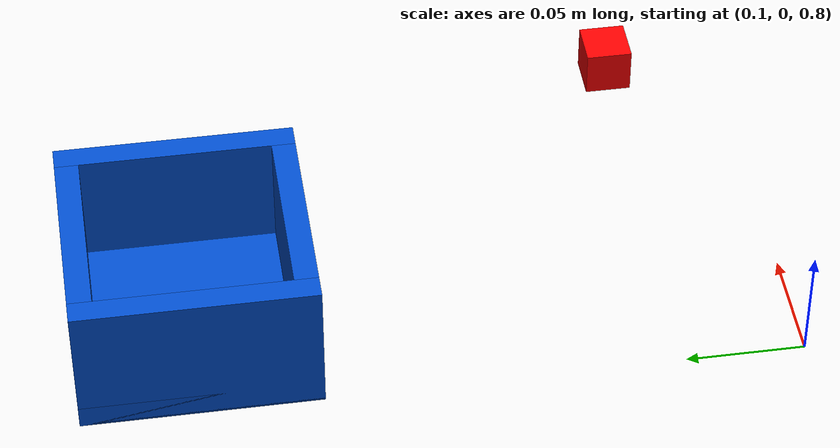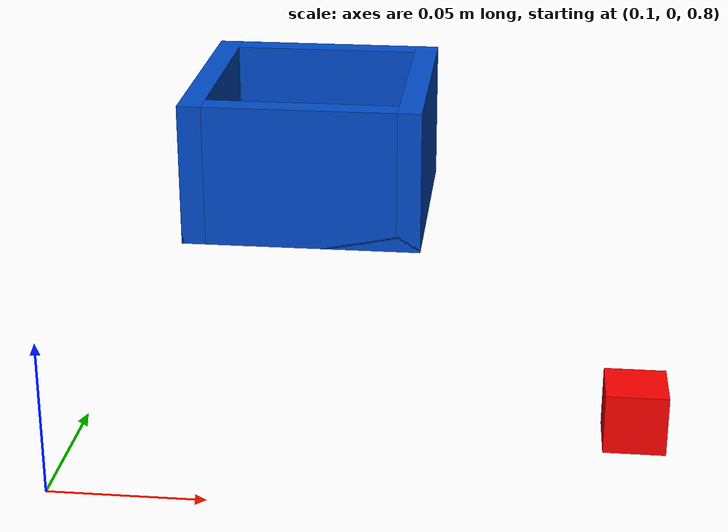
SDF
<?xml version="1.0" ?>
<sdf version="1.8">
  <world name="assistive_world">
    <physics name="1ms" type="ignored">
      <max_step_size>0.001</max_step_size>
      <real_time_factor>1.0</real_time_factor>
    </physics>
    <plugin filename="gz-sim-physics-system" name="gz::sim::systems::Physics"/>
    <plugin filename="gz-sim-sensors-system" name="gz::sim::systems::Sensors">
      <render_engine>ogre2</render_engine>
    </plugin>
    <plugin filename="gz-sim-user-commands-system" name="gz::sim::systems::UserCommands"/>
    <plugin filename="gz-sim-scene-broadcaster-system" name="gz::sim::systems::SceneBroadcaster"/>

    <light type="directional" name="sun">
      <cast_shadows>true</cast_shadows>
      <pose>0 0 10 0 0 0</pose>
      <diffuse>0.8 0.8 0.8 1</diffuse>
      <specular>0.2 0.2 0.2 1</specular>
      <direction>-0.5 0.1 -0.9</direction>
    </light>

    <model name="ground_plane">
      <static>true</static>
      <link name="link">
        <collision name="collision"><geometry><plane><normal>0 0 1</normal><size>100 100</size></plane></geometry></collision>
        <visual name="visual">
          <geometry><plane><normal>0 0 1</normal><size>100 100</size></plane></geometry>
          <material><ambient>0.8 0.8 0.8 1</ambient><diffuse>0.8 0.8 0.8 1</diffuse></material>
        </visual>
      </link>
    </model>
    <model name="red_target_block">
      <pose>0.28 0.05 0.811 0 0 0</pose>
      <link name="link">
        <inertial>
          <mass>0.01</mass>
          <inertia><ixx>0.0001</ixx><iyy>0.0001</iyy><izz>0.0001</izz></inertia>
        </inertial>
        <collision name="collision">
          <geometry><box><size>0.02 0.02 0.02</size></box></geometry>
        </collision>
        <visual name="visual">
          <geometry><box><size>0.02 0.02 0.02</size></box></geometry>
          <material>
            <ambient>1.0 0.0 0.0 1.0</ambient>
            <diffuse>1.0 0.0 0.0 1.0</diffuse>
          </material>
        </visual>
      </link>
    </model>
    <model name="blue_sorting_bin">
      <pose>0.15 0.25 0.8 0 0 0</pose>
      <static>true</static> <link name="bin_base">
        <pose>0 0 0.005 0 0 0</pose>
        <collision name="collision"><geometry><box><size>0.10 0.10 0.01</size></box></geometry></collision>
        <visual name="visual">
          <geometry><box><size>0.10 0.10 0.01</size></box></geometry>
          <material><ambient>0.0 0.3 0.8 1.0</ambient><diffuse>0.0 0.3 0.8 1.0</diffuse></material>
        </visual>
      </link>

      <link name="wall_front">
        <pose>0.045 0 0.03 0 0 0</pose>
        <collision name="collision"><geometry><box><size>0.01 0.10 0.06</size></box></geometry></collision>
        <visual name="visual">
          <geometry><box><size>0.01 0.10 0.06</size></box></geometry>
          <material><ambient>0.0 0.3 0.8 1.0</ambient><diffuse>0.0 0.3 0.8 1.0</diffuse></material>
        </visual>
      </link>

      <link name="wall_back">
        <pose>-0.045 0 0.03 0 0 0</pose>
        <collision name="collision"><geometry><box><size>0.01 0.10 0.06</size></box></geometry></collision>
        <visual name="visual">
          <geometry><box><size>0.01 0.10 0.06</size></box></geometry>
          <material><ambient>0.0 0.3 0.8 1.0</ambient><diffuse>0.0 0.3 0.8 1.0</diffuse></material>
        </visual>
      </link>

      <link name="wall_left">
        <pose>0 0.045 0.03 0 0 0</pose>
        <collision name="collision"><geometry><box><size>0.08 0.01 0.06</size></box></geometry></collision>
        <visual name="visual">
          <geometry><box><size>0.08 0.01 0.06</size></box></geometry>
          <material><ambient>0.0 0.3 0.8 1.0</ambient><diffuse>0.0 0.3 0.8 1.0</diffuse></material>
        </visual>
      </link>

      <link name="wall_right">
        <pose>0 -0.045 0.03 0 0 0</pose>
        <collision name="collision"><geometry><box><size>0.08 0.01 0.06</size></box></geometry></collision>
        <visual name="visual">
          <geometry><box><size>0.08 0.01 0.06</size></box></geometry>
          <material><ambient>0.0 0.3 0.8 1.0</ambient><diffuse>0.0 0.3 0.8 1.0</diffuse></material>
        </visual>
      </link>
    </model>
  </world>
</sdf>
